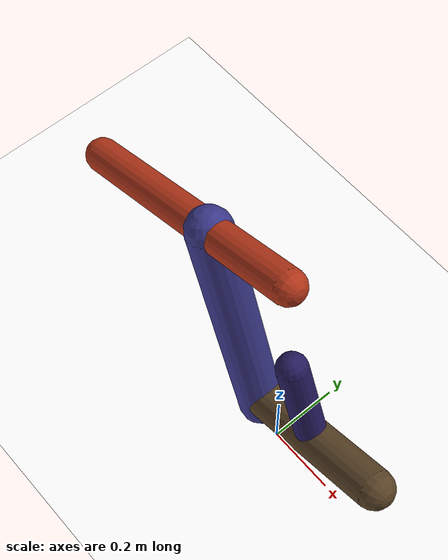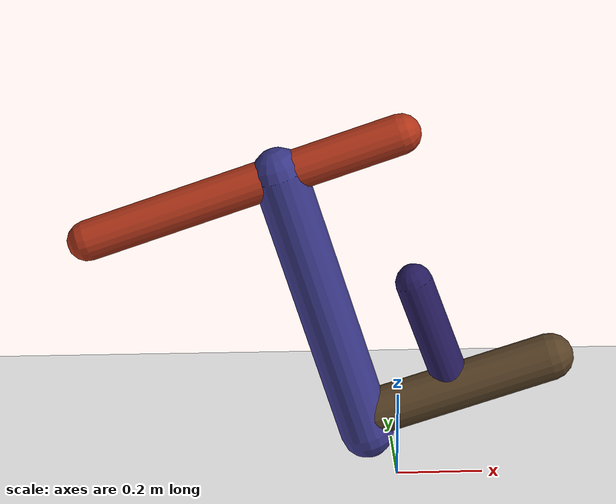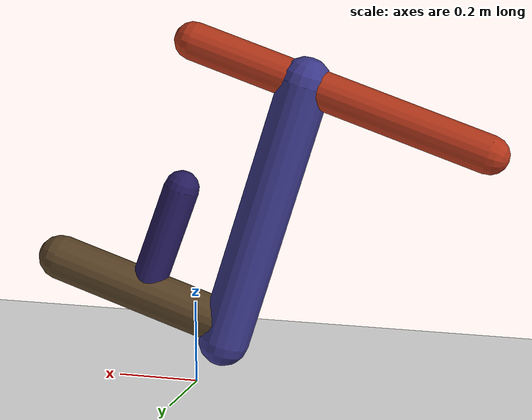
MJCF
<mujoco model="morphology">
  <option timestep="0.01"/>
  <default>
    <default class="/"/>
  </default>
  <asset>
    <texture name="texplane" type="2d" builtin="checker" rgb1="0.1 0.2 0.3" rgb2="0.2 0.3 0.4" width="300" height="300"/>
    <material name="MatPlane" class="/" texture="texplane" texrepeat="20 20" specular="1" shininess="1" reflectance="0.5"/>
  </asset>
  <worldbody>
    <light name="//unnamed_light_0" class="/" directional="true" pos="0 0 1.5" dir="0 0 -1.3" cutoff="1e+02" exponent="1" diffuse="1 1 1" specular="0.1 0.1 0.1"/>
    <geom name="ground" class="/" type="plane" size="15 15 0.5" material="MatPlane" rgba="1 1 1 1"/>
    <body name="body" pos="0 0 0.83">
      <geom name="geom0" class="/" type="capsule" contype="1" conaffinity="1" condim="3" size="0.046" rgba="0.7 0.21 0.1 1" friction="0.4 0.1 0.1" fromto="0 0 0 -0.7 0 -0.24"/>
      <body name="body1" pos="-0.27 0 -0.091">
        <geom name="geom1" class="/" type="capsule" contype="1" conaffinity="1" condim="3" size="0.062" rgba="0.23 0.22 0.54 1" friction="0.4 0.1 0.1" fromto="0 0 0 0.2 0 -0.63"/>
        <body name="body2" pos="0.19 0 -0.59">
          <geom name="geom2" class="/" type="capsule" contype="1" conaffinity="1" condim="3" size="0.055" rgba="0.35 0.26 0.15 1" friction="0.4 0.1 0.1" fromto="0 0 0 0.43 0 0.14"/>
          <body name="body3" pos="0.21 0 0.069">
            <geom name="geom3" class="/" type="capsule" contype="1" conaffinity="1" condim="3" size="0.043" rgba="0.15 0.11 0.37 1" friction="0.4 0.1 0.1" fromto="0 0 0 -0.096 0 0.26"/>
            <joint name="joint3" class="/" type="hinge" axis="0 1 0" limited="true" stiffness="20" range="-36 36" armature="0.1" damping="2"/>
          </body>
          <joint name="joint2" class="/" type="hinge" axis="0 1 0" limited="true" stiffness="20" range="-54 54" armature="0.1" damping="2"/>
        </body>
        <joint name="joint1" class="/" type="hinge" axis="0 1 0" limited="true" stiffness="20" range="-46 46" armature="0.1" damping="2"/>
      </body>
      <joint name="rootx" class="/" type="slide" axis="1 0 0" limited="false" stiffness="0" armature="0" damping="0"/>
      <joint name="rootz" class="/" type="slide" axis="0 0 1" limited="false" stiffness="0" armature="0" damping="0"/>
      <joint name="rooty" class="/" type="hinge" axis="0 1 0" limited="false" stiffness="0" armature="0" damping="0"/>
    </body>
  </worldbody>
  <actuator>
    <motor name="motor3" class="/" ctrllimited="true" ctrlrange="-1 1" gear="1.1e+02" joint="joint3"/>
    <motor name="motor2" class="/" ctrllimited="true" ctrlrange="-1 1" gear="1.4e+02" joint="joint2"/>
    <motor name="motor1" class="/" ctrllimited="true" ctrlrange="-1 1" gear="1.5e+02" joint="joint1"/>
  </actuator>
  <sensor>
    <subtreelinvel name="velocity" body="body"/>
  </sensor>
</mujoco>
